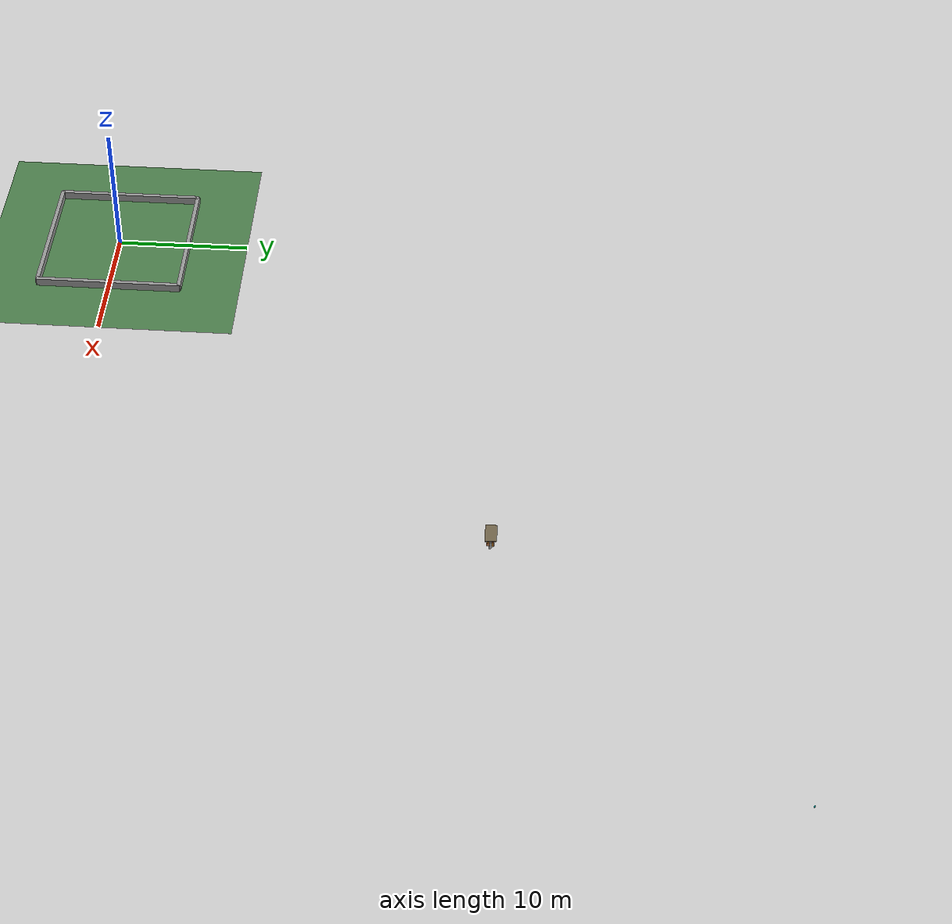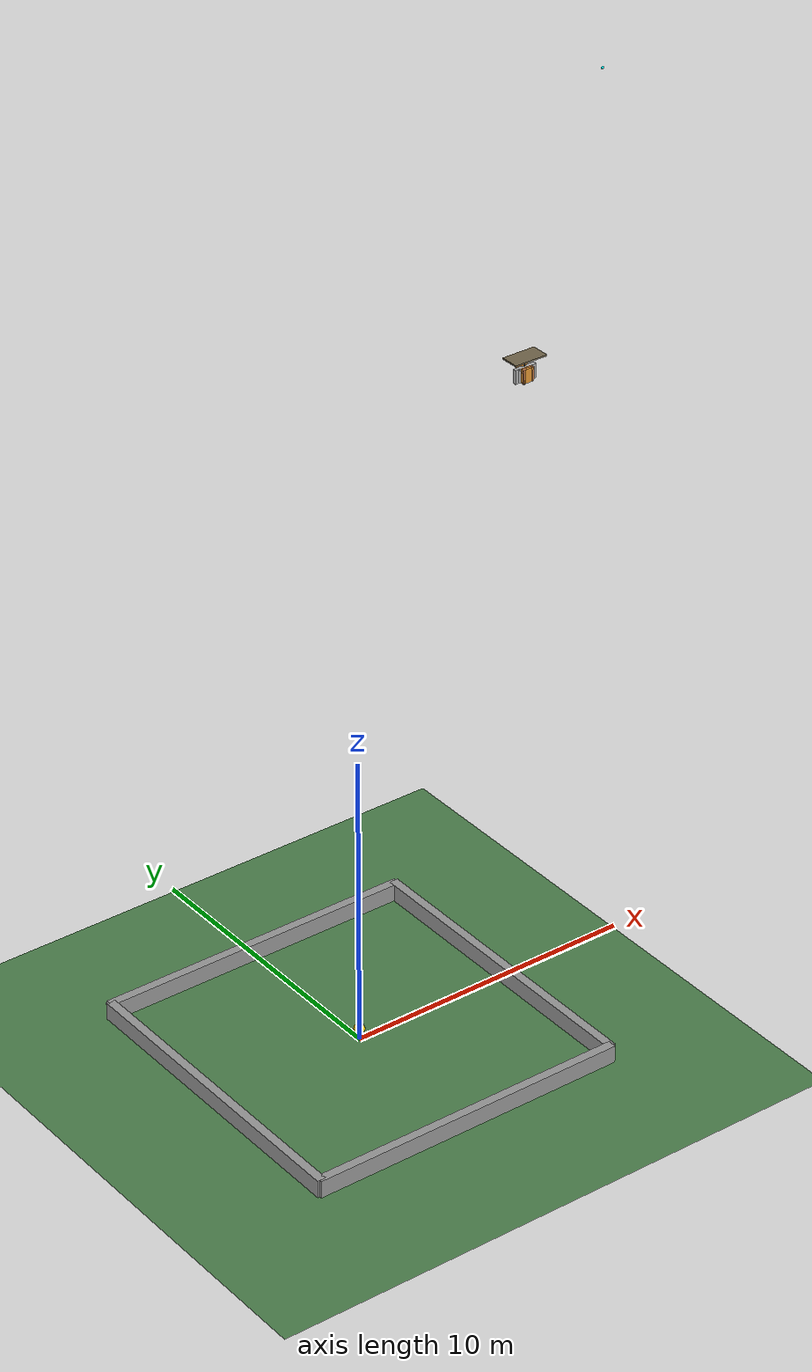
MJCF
<mujoco model="fishbot">
  <compiler angle="degree" coordinate="local" meshdir="none"/>
  <option timestep="0.02" gravity="0 0 -9.81">
    <flag contact="enable"/>
  </option>
  <default>
    <geom type="cylinder" condim="3" friction="1.0 0.005 0.0001"/>
    <joint type="hinge" damping="0.1" armature="0.005"/>
  </default>
  <worldbody>
    <!-- 全局光源: 增强环境光保证 GUI/渲染不黑 (黑屏主因=环境光不足) -->
    <light pos="0 0 12" dir="0 0 -1" diffuse="0.95 0.95 0.95" ambient="0.75 0.75 0.75" castshadow="true"/>
    <light pos="-12 0 6" dir="1 0 -0.3" diffuse="0.5 0.5 0.5" ambient="0.35 0.35 0.35"/>
    <light pos="12 0 6" dir="-1 0 -0.3" diffuse="0.5 0.5 0.5" ambient="0.35 0.35 0.35"/>
    <light pos="0 12 4" dir="0 -1 -0.3" diffuse="0.45 0.45 0.45" ambient="0.3 0.3 0.3"/>
    <!-- 固定俯视相机 (GUI/渲染用: 从上方 45° 看全场景, 视角明确不黑) -->
    <camera name="top_view" pos="0 0 13" quat="0.924 0.383 0 0" mode="fixed"/>
    <!-- 地面 -->
    <geom name="ground" type="plane" size="10 10 0.1" rgba="0.3 0.5 0.3 1" friction="1.0"/>
    <!-- 目标标记: 金色球, reset 时动态更新位置 (纯可视化, 不参与碰撞/激光) -->
    <geom name="goal_marker" type="sphere" size="0.18" pos="0 0 0.4" rgba="1.0 0.85 0.0 1" contype="0" conaffinity="0"/>
    <!-- ===== 边界墙 (实体, 与 gazebo SquareWorld2 对齐 ±5.425m; 四角重叠无缝隙) ===== -->
    <geom name="wall_n" type="box" size="5.5 0.15 0.3" pos="0 5.425 0.3" rgba="0.6 0.6 0.6 1" friction="0.9"/>
    <geom name="wall_s" type="box" size="5.5 0.15 0.3" pos="0 -5.425 0.3" rgba="0.6 0.6 0.6 1" friction="0.9"/>
    <geom name="wall_e" type="box" size="0.15 5.5 0.3" pos="5.425 0 0.3" rgba="0.6 0.6 0.6 1" friction="0.9"/>
    <geom name="wall_w" type="box" size="0.15 5.5 0.3" pos="-5.425 0 0.3" rgba="0.6 0.6 0.6 1" friction="0.9"/>

    <!-- ===== 障碍物 (每个包一层静态 body: 位置/旋转用 body_pos/body_quat 动态改 (mujoco 3.11 中
         geom_quat 运行时赋值不生效, body_quat 生效); geom 尺寸/颜色/contype 动态改) ===== -->
    <body name="obsb_0" pos="30 30 0.3"><geom name="obs_0" type="box" size="0.2 0.2 0.3" rgba="0.9 0.6 0.2 1" friction="0.8"/></body>
    <body name="obsb_1" pos="30 30 0.3"><geom name="obs_1" type="box" size="0.25 0.15 0.3" rgba="0.9 0.6 0.2 1" friction="0.8"/></body>
    <body name="obsb_2" pos="30 30 0.3"><geom name="obs_2" type="box" size="0.15 0.25 0.3" rgba="0.9 0.6 0.2 1" friction="0.8"/></body>
    <body name="obsb_3" pos="30 30 0.3"><geom name="obs_3" type="box" size="0.2 0.2 0.3" rgba="0.9 0.6 0.2 1" friction="0.8"/></body>
    <body name="obsb_4" pos="30 30 0.3"><geom name="obs_4" type="box" size="0.2 0.2 0.3" rgba="0.9 0.6 0.2 1" friction="0.8"/></body>
    <body name="obsb_5" pos="30 30 0.3"><geom name="obs_5" type="box" size="0.25 0.2 0.3" rgba="0.9 0.6 0.2 1" friction="0.8"/></body>
    <body name="obsb_6" pos="30 30 0.3"><geom name="obs_6" type="box" size="0.2 0.25 0.3" rgba="0.9 0.6 0.2 1" friction="0.8"/></body>
    <body name="obsb_7" pos="30 30 0.3"><geom name="obs_7" type="box" size="0.2 0.2 0.3" rgba="0.9 0.6 0.2 1" friction="0.8"/></body>
    <body name="obsb_8" pos="30 30 0.3"><geom name="obs_8" type="box" size="0.5 0.08 0.3" rgba="0.7 0.7 0.7 1" friction="0.8"/></body>
    <body name="obsb_9" pos="30 30 0.3"><geom name="obs_9" type="box" size="0.5 0.08 0.3" rgba="0.7 0.7 0.7 1" friction="0.8"/></body>
    <body name="obsb_10" pos="30 30 0.3"><geom name="obs_10" type="box" size="0.5 0.08 0.3" rgba="0.7 0.7 0.7 1" friction="0.8"/></body>
    <body name="obsb_11" pos="30 30 0.3"><geom name="obs_11" type="box" size="0.5 0.08 0.3" rgba="0.7 0.7 0.7 1" friction="0.8"/></body>
    <body name="obsb_12" pos="30 30 0.3"><geom name="obs_12" type="box" size="0.35 0.08 0.3" rgba="0.7 0.7 0.7 1" friction="0.8"/></body>
    <body name="obsb_13" pos="30 30 0.3"><geom name="obs_13" type="box" size="0.35 0.08 0.3" rgba="0.7 0.7 0.7 1" friction="0.8"/></body>
    <body name="obsb_14" pos="30 30 0.3"><geom name="obs_14" type="box" size="0.25 0.25 0.3" rgba="0.8 0.5 0.3 1" friction="0.8"/></body>
    <body name="obsb_15" pos="30 30 0.3"><geom name="obs_15" type="box" size="0.22 0.15 0.3" rgba="0.8 0.5 0.3 1" friction="0.8"/></body>
    <body name="obsb_16" pos="30 30 0.3"><geom name="obs_16" type="box" size="0.02 0.02 0.5" rgba="0.25 0.25 0.25 1" friction="0.8"/></body>
    <body name="obsb_17" pos="30 30 0.3"><geom name="obs_17" type="box" size="0.02 0.02 0.5" rgba="0.25 0.25 0.25 1" friction="0.8"/></body>
    <body name="obsb_18" pos="30 30 1.0"><geom name="obs_18" type="box" size="0.75 0.4 0.03" rgba="0.45 0.4 0.3 1" friction="0.8" contype="0" conaffinity="0"/></body>

    <!-- ===== UGV 底盘 (URDF: 半径0.10 高0.12, 装高0.076) ===== -->
    <body name="chassis" pos="0 0 0.076">
      <freejoint name="root"/>
      <geom name="base_link" type="cylinder" size="0.10 0.06" mass="1.8" rgba="0.1 0.1 1.0 0.8" friction="0.8"/>
      <!-- 激光雷达 (装高 +0.075) -->
      <geom name="laser" type="cylinder" size="0.02 0.01" pos="0 0 0.075" mass="0.02" rgba="0.0 0.0 0.0 0.5" friction="0.5"/>
      <!-- 左轮 (轮径6.5cm, 轮距~16cm) -->
      <body name="wheel_l" pos="0 -0.08 0">
        <joint name="wheel_l_joint" axis="0 1 0"/>
        <geom name="wheel_l_geom" type="cylinder" size="0.0325 0.02" mass="0.08" rgba="0.1 0.1 0.1 1" friction="1.2"/>
      </body>
      <!-- 右轮 -->
      <body name="wheel_r" pos="0 0.08 0">
        <joint name="wheel_r_joint" axis="0 1 0"/>
        <geom name="wheel_r_geom" type="cylinder" size="0.0325 0.02" mass="0.08" rgba="0.1 0.1 0.1 1" friction="1.2"/>
      </body>
      <!-- 鱼眼摄像头 (lidar 前方 0.12m, 同高 0.075 世界高=0.151, 对齐真车 OV3660@ESP32S3) -->
      <camera name="fisheye" pos="0.12 0 0.075" mode="fixed" zaxis="1 0 0"/>
      <!-- 后支撑轮 -->
      <body name="caster" pos="-0.07 0 -0.052">
        <geom name="caster_geom" type="sphere" size="0.015" mass="0.01" rgba="0.5 0.5 0.5 1" friction="0.5"/>
      </body>
    </body>

    <!-- ===== 仅可视化 geom (contype=0 不参与碰撞, view.py 更新位置) ===== -->
    <geom name="guide" type="sphere" size="0.06" pos="50 50 0.03" rgba="0.0 1.0 1.0 0.9" contype="0" conaffinity="0"/>
    <geom name="path_0" type="sphere" size="0.04" pos="50 50 0.02" rgba="0.0 1.0 0.0 0.8" contype="0" conaffinity="0"/>
    <geom name="path_1" type="sphere" size="0.04" pos="50 50 0.02" rgba="0.0 1.0 0.0 0.8" contype="0" conaffinity="0"/>
    <geom name="path_2" type="sphere" size="0.04" pos="50 50 0.02" rgba="0.0 1.0 0.0 0.8" contype="0" conaffinity="0"/>
    <geom name="path_3" type="sphere" size="0.04" pos="50 50 0.02" rgba="0.0 1.0 0.0 0.8" contype="0" conaffinity="0"/>
    <geom name="path_4" type="sphere" size="0.04" pos="50 50 0.02" rgba="0.0 1.0 0.0 0.8" contype="0" conaffinity="0"/>
    <geom name="path_5" type="sphere" size="0.04" pos="50 50 0.02" rgba="0.0 1.0 0.0 0.8" contype="0" conaffinity="0"/>
    <geom name="path_6" type="sphere" size="0.04" pos="50 50 0.02" rgba="0.0 1.0 0.0 0.8" contype="0" conaffinity="0"/>
    <geom name="path_7" type="sphere" size="0.04" pos="50 50 0.02" rgba="0.0 1.0 0.0 0.8" contype="0" conaffinity="0"/>
    <geom name="path_8" type="sphere" size="0.04" pos="50 50 0.02" rgba="0.0 1.0 0.0 0.8" contype="0" conaffinity="0"/>
    <geom name="path_9" type="sphere" size="0.04" pos="50 50 0.02" rgba="0.0 1.0 0.0 0.8" contype="0" conaffinity="0"/>
    <geom name="ray_0" type="cylinder" size="0.004 0.01" pos="50 50 0.02" rgba="1.0 0.3 0.0 0.5" contype="0" conaffinity="0"/>
    <geom name="ray_1" type="cylinder" size="0.004 0.01" pos="50 50 0.02" rgba="1.0 0.3 0.0 0.5" contype="0" conaffinity="0"/>
    <geom name="ray_2" type="cylinder" size="0.004 0.01" pos="50 50 0.02" rgba="1.0 0.3 0.0 0.5" contype="0" conaffinity="0"/>
    <geom name="ray_3" type="cylinder" size="0.004 0.01" pos="50 50 0.02" rgba="1.0 0.3 0.0 0.5" contype="0" conaffinity="0"/>
    <geom name="ray_4" type="cylinder" size="0.004 0.01" pos="50 50 0.02" rgba="1.0 0.3 0.0 0.5" contype="0" conaffinity="0"/>
    <geom name="ray_5" type="cylinder" size="0.004 0.01" pos="50 50 0.02" rgba="1.0 0.3 0.0 0.5" contype="0" conaffinity="0"/>
    <geom name="ray_6" type="cylinder" size="0.004 0.01" pos="50 50 0.02" rgba="1.0 0.3 0.0 0.5" contype="0" conaffinity="0"/>
    <geom name="ray_7" type="cylinder" size="0.004 0.01" pos="50 50 0.02" rgba="1.0 0.3 0.0 0.5" contype="0" conaffinity="0"/>
    <geom name="ray_8" type="cylinder" size="0.004 0.01" pos="50 50 0.02" rgba="1.0 0.3 0.0 0.5" contype="0" conaffinity="0"/>
    <geom name="ray_9" type="cylinder" size="0.004 0.01" pos="50 50 0.02" rgba="1.0 0.3 0.0 0.5" contype="0" conaffinity="0"/>
    <geom name="ray_10" type="cylinder" size="0.004 0.01" pos="50 50 0.02" rgba="1.0 0.3 0.0 0.5" contype="0" conaffinity="0"/>
    <geom name="ray_11" type="cylinder" size="0.004 0.01" pos="50 50 0.02" rgba="1.0 0.3 0.0 0.5" contype="0" conaffinity="0"/>
    <geom name="ray_12" type="cylinder" size="0.004 0.01" pos="50 50 0.02" rgba="1.0 0.3 0.0 0.5" contype="0" conaffinity="0"/>
    <geom name="ray_13" type="cylinder" size="0.004 0.01" pos="50 50 0.02" rgba="1.0 0.3 0.0 0.5" contype="0" conaffinity="0"/>
    <geom name="ray_14" type="cylinder" size="0.004 0.01" pos="50 50 0.02" rgba="1.0 0.3 0.0 0.5" contype="0" conaffinity="0"/>
    <geom name="ray_15" type="cylinder" size="0.004 0.01" pos="50 50 0.02" rgba="1.0 0.3 0.0 0.5" contype="0" conaffinity="0"/>
    <geom name="ray_16" type="cylinder" size="0.004 0.01" pos="50 50 0.02" rgba="1.0 0.3 0.0 0.5" contype="0" conaffinity="0"/>
    <geom name="ray_17" type="cylinder" size="0.004 0.01" pos="50 50 0.02" rgba="1.0 0.3 0.0 0.5" contype="0" conaffinity="0"/>
    <geom name="ray_18" type="cylinder" size="0.004 0.01" pos="50 50 0.02" rgba="1.0 0.3 0.0 0.5" contype="0" conaffinity="0"/>
    <geom name="ray_19" type="cylinder" size="0.004 0.01" pos="50 50 0.02" rgba="1.0 0.3 0.0 0.5" contype="0" conaffinity="0"/>
    <geom name="ray_20" type="cylinder" size="0.004 0.01" pos="50 50 0.02" rgba="1.0 0.3 0.0 0.5" contype="0" conaffinity="0"/>
    <geom name="ray_21" type="cylinder" size="0.004 0.01" pos="50 50 0.02" rgba="1.0 0.3 0.0 0.5" contype="0" conaffinity="0"/>
    <geom name="ray_22" type="cylinder" size="0.004 0.01" pos="50 50 0.02" rgba="1.0 0.3 0.0 0.5" contype="0" conaffinity="0"/>
    <geom name="ray_23" type="cylinder" size="0.004 0.01" pos="50 50 0.02" rgba="1.0 0.3 0.0 0.5" contype="0" conaffinity="0"/>
    <geom name="ray_24" type="cylinder" size="0.004 0.01" pos="50 50 0.02" rgba="1.0 0.3 0.0 0.5" contype="0" conaffinity="0"/>
    <geom name="ray_25" type="cylinder" size="0.004 0.01" pos="50 50 0.02" rgba="1.0 0.3 0.0 0.5" contype="0" conaffinity="0"/>
    <geom name="ray_26" type="cylinder" size="0.004 0.01" pos="50 50 0.02" rgba="1.0 0.3 0.0 0.5" contype="0" conaffinity="0"/>
    <geom name="ray_27" type="cylinder" size="0.004 0.01" pos="50 50 0.02" rgba="1.0 0.3 0.0 0.5" contype="0" conaffinity="0"/>
    <geom name="ray_28" type="cylinder" size="0.004 0.01" pos="50 50 0.02" rgba="1.0 0.3 0.0 0.5" contype="0" conaffinity="0"/>
    <geom name="ray_29" type="cylinder" size="0.004 0.01" pos="50 50 0.02" rgba="1.0 0.3 0.0 0.5" contype="0" conaffinity="0"/>
    <geom name="ray_30" type="cylinder" size="0.004 0.01" pos="50 50 0.02" rgba="1.0 0.3 0.0 0.5" contype="0" conaffinity="0"/>
    <geom name="ray_31" type="cylinder" size="0.004 0.01" pos="50 50 0.02" rgba="1.0 0.3 0.0 0.5" contype="0" conaffinity="0"/>
    <geom name="ray_32" type="cylinder" size="0.004 0.01" pos="50 50 0.02" rgba="1.0 0.3 0.0 0.5" contype="0" conaffinity="0"/>
    <geom name="ray_33" type="cylinder" size="0.004 0.01" pos="50 50 0.02" rgba="1.0 0.3 0.0 0.5" contype="0" conaffinity="0"/>
    <geom name="ray_34" type="cylinder" size="0.004 0.01" pos="50 50 0.02" rgba="1.0 0.3 0.0 0.5" contype="0" conaffinity="0"/>
    <geom name="ray_35" type="cylinder" size="0.004 0.01" pos="50 50 0.02" rgba="1.0 0.3 0.0 0.5" contype="0" conaffinity="0"/>
  </worldbody>
</mujoco>
